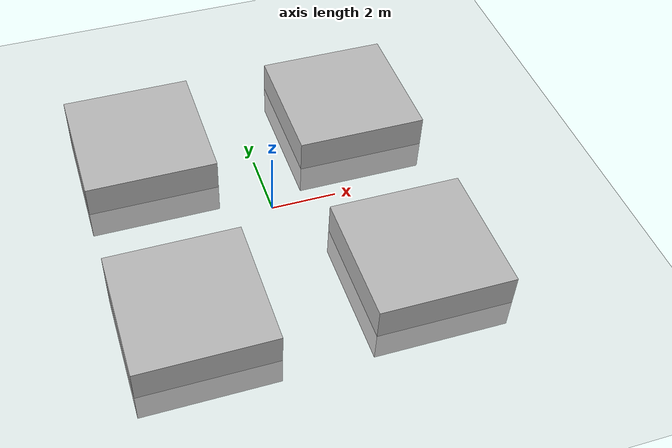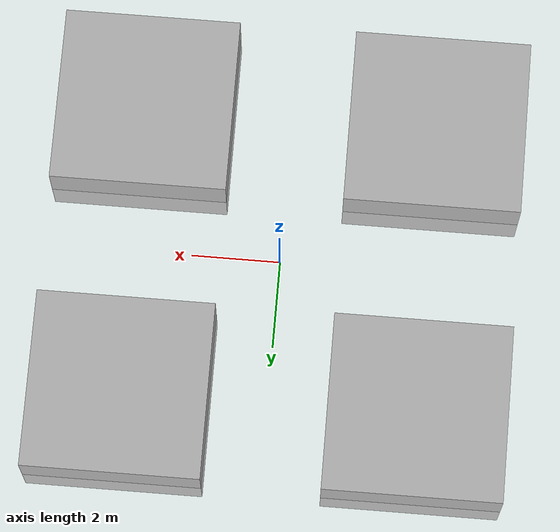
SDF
<?xml version="1.0"?>
<sdf version="1.4">
  <world name="default">

  <physics type='ode'>
  <max_step_size>0.020000</max_step_size>
  <real_time_update_rate>50</real_time_update_rate>
  <gravity>0.000000 0.000000 -9.800000</gravity>
</physics>

    <include>
      <uri>model://ground_plane</uri>
    </include>

    <include>
      <uri>model://sun</uri>
    </include>

    <model name ='box1'>
    <static>true</static>
    <pose>3.33 3.33 0 0 0 0</pose>
    <link name ='link'>
      <collision name ='collision'>
        <geometry>
          <box><size>4 4 2</size></box>
        </geometry>
      </collision>
      <visual name ='visual'>
        <geometry>
          <box><size>4 4 2</size></box>
        </geometry>
      </visual>
    </link>
  </model>

 <model name ='box2'>
    <static>true</static>
    <pose>-3.33 -3.33 0 0 0 0</pose>
    <link name ='link'>
      <collision name ='collision'>
        <geometry>
          <box><size>4 4 2</size></box>
        </geometry>
      </collision>
      <visual name ='visual'>
        <geometry>
          <box><size>4 4 2</size></box>
        </geometry>
      </visual>
    </link>
  </model>

  <model name ='box3'>
    <static>true</static>
    <pose>3.33 -3.33 0 0 0 0</pose>
    <link name ='link'>
      <collision name ='collision'>
        <geometry>
          <box><size>4 4 2</size></box>
        </geometry>
      </collision>
      <visual name ='visual'>
        <geometry>
          <box><size>4 4 2</size></box>
        </geometry>
      </visual>
    </link>
  </model>

  <model name ='box4'>
    <static>true</static>
    <pose>-3.33 3.33 0 0 0 0</pose>
    <link name ='link'>
      <collision name ='collision'>
        <geometry>
          <box><size>4 4 2</size></box>
        </geometry>
      </collision>
      <visual name ='visual'>
        <geometry>
          <box><size>4 4 2</size></box>
        </geometry>
      </visual>
    </link>
  </model>

    <plugin name="menge_gazebo_plugin" filename="/home/tingxfan/quadevac_sim_ws/catkin_ws/devel/lib/libmenge_gazebo_plugin.so"/>
  </world>
</sdf>
